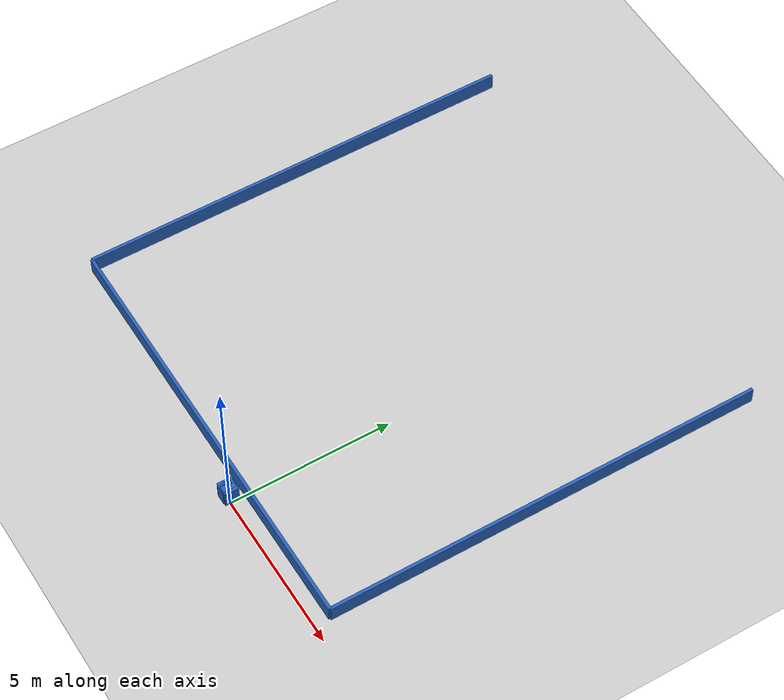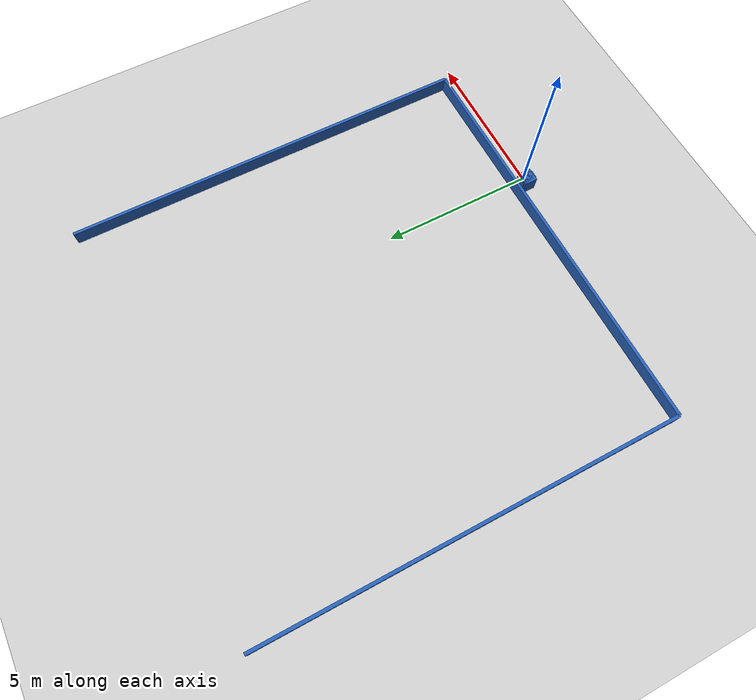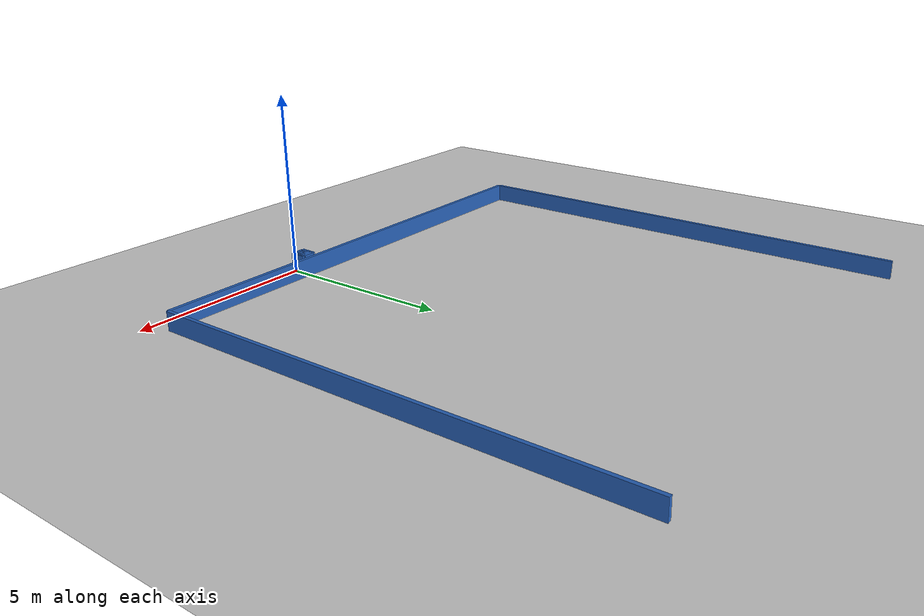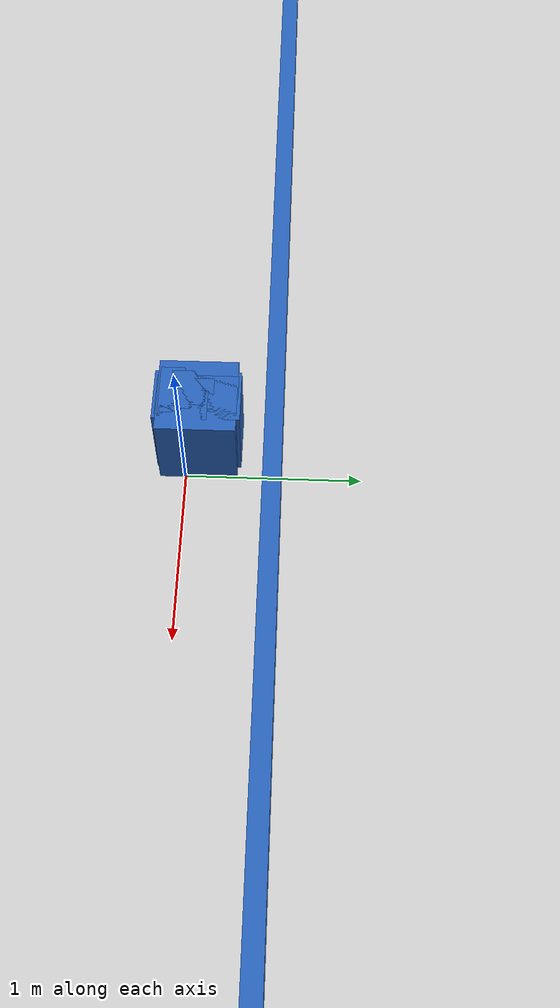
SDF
<?xml version="1.0" ?>
    <sdf version="1.5">
      <world name="default">
        <!-- A global light source -->
        <include>
          <uri>model://sun</uri>
        </include>
        <!-- A ground plane -->
        <include>
          <uri>model://ground_plane</uri>
        </include>

    <model name='libopen_space_final_T2B_51_63'>
      <static>1</static>
      <pose frame=''>-0.225000 0.075000 0.000000 0.000000 0.000000 0.000000</pose>
      <link name='link'>
        <inertial>
          <mass>1</mass>
          <inertia>
            <ixx>0.145833</ixx>
            <ixy>0</ixy>
            <ixz>0</ixz>
            <iyy>0.145833</iyy>
            <iyz>0</iyz>
            <izz>0.125</izz>
          </inertia>
        </inertial>
        <collision name='collision'>
          <geometry>
            <box>
              <size>0.18 0.22 1</size>
            </box>
          </geometry>
          <max_contacts>10</max_contacts>
          <surface>
            <contact>
              <ode/>
            </contact>
            <bounce/>
            <friction>
              <torsional>
                <ode/>
              </torsional>
              <ode/>
            </friction>
          </surface>
        </collision>
        <visual name='visual'>
          <geometry>
            <box>
              <size>0.18 0.22 1</size>
            </box>
          </geometry>
	    <material>
              <ambient>0.152000 0.379000 0.720000 1</ambient>
	      <diffuse>0.152000 0.379000 0.720000 1</diffuse>
          </material>
          <material>
            <script>
              <name>Gazebo/Grey</name>
              <uri>file://media/materials/scripts/gazebo.material</uri>
            </script>
          </material>
        </visual>
        <self_collide>0</self_collide>
        <kinematic>0</kinematic>
        <gravity>1</gravity>
      </link>
      <plugin name='libopen_space_final_T2B_51_63' filename='libopen_space_final_T2B_51_63.so'/>
    </model>

    <model name='libopen_space_final_T2B_79_14'>
      <static>1</static>
      <pose frame=''>-0.225000 0.075000 0.000000 0.000000 0.000000 0.000000</pose>
      <link name='link'>
        <inertial>
          <mass>1</mass>
          <inertia>
            <ixx>0.145833</ixx>
            <ixy>0</ixy>
            <ixz>0</ixz>
            <iyy>0.145833</iyy>
            <iyz>0</iyz>
            <izz>0.125</izz>
          </inertia>
        </inertial>
        <collision name='collision'>
          <geometry>
            <box>
              <size>0.45 0.44 1</size>
            </box>
          </geometry>
          <max_contacts>10</max_contacts>
          <surface>
            <contact>
              <ode/>
            </contact>
            <bounce/>
            <friction>
              <torsional>
                <ode/>
              </torsional>
              <ode/>
            </friction>
          </surface>
        </collision>
        <visual name='visual'>
          <geometry>
            <box>
              <size>0.45 0.44 1</size>
            </box>
          </geometry>
	    <material>
              <ambient>0.152000 0.379000 0.720000 1</ambient>
	      <diffuse>0.152000 0.379000 0.720000 1</diffuse>
          </material>
          <material>
            <script>
              <name>Gazebo/Grey</name>
              <uri>file://media/materials/scripts/gazebo.material</uri>
            </script>
          </material>
        </visual>
        <self_collide>0</self_collide>
        <kinematic>0</kinematic>
        <gravity>1</gravity>
      </link>
      <plugin name='libopen_space_final_T2B_79_14' filename='libopen_space_final_T2B_79_14.so'/>
    </model>

    <model name='libopen_space_final_T2B_126_78'>
      <static>1</static>
      <pose frame=''>-0.225000 0.075000 0.000000 0.000000 0.000000 0.000000</pose>
      <link name='link'>
        <inertial>
          <mass>1</mass>
          <inertia>
            <ixx>0.145833</ixx>
            <ixy>0</ixy>
            <ixz>0</ixz>
            <iyy>0.145833</iyy>
            <iyz>0</iyz>
            <izz>0.125</izz>
          </inertia>
        </inertial>
        <collision name='collision'>
          <geometry>
            <box>
              <size>0.28 0.25 1</size>
            </box>
          </geometry>
          <max_contacts>10</max_contacts>
          <surface>
            <contact>
              <ode/>
            </contact>
            <bounce/>
            <friction>
              <torsional>
                <ode/>
              </torsional>
              <ode/>
            </friction>
          </surface>
        </collision>
        <visual name='visual'>
          <geometry>
            <box>
              <size>0.28 0.25 1</size>
            </box>
          </geometry>
	    <material>
              <ambient>0.152000 0.379000 0.720000 1</ambient>
	      <diffuse>0.152000 0.379000 0.720000 1</diffuse>
          </material>
          <material>
            <script>
              <name>Gazebo/Grey</name>
              <uri>file://media/materials/scripts/gazebo.material</uri>
            </script>
          </material>
        </visual>
        <self_collide>0</self_collide>
        <kinematic>0</kinematic>
        <gravity>1</gravity>
      </link>
      <plugin name='libopen_space_final_T2B_126_78' filename='libopen_space_final_T2B_126_78.so'/>
    </model>

    <model name='libopen_space_final_T2B_115_16'>
      <static>1</static>
      <pose frame=''>-0.225000 0.075000 0.000000 0.000000 0.000000 0.000000</pose>
      <link name='link'>
        <inertial>
          <mass>1</mass>
          <inertia>
            <ixx>0.145833</ixx>
            <ixy>0</ixy>
            <ixz>0</ixz>
            <iyy>0.145833</iyy>
            <iyz>0</iyz>
            <izz>0.125</izz>
          </inertia>
        </inertial>
        <collision name='collision'>
          <geometry>
            <box>
              <size>0.32 0.12 1</size>
            </box>
          </geometry>
          <max_contacts>10</max_contacts>
          <surface>
            <contact>
              <ode/>
            </contact>
            <bounce/>
            <friction>
              <torsional>
                <ode/>
              </torsional>
              <ode/>
            </friction>
          </surface>
        </collision>
        <visual name='visual'>
          <geometry>
            <box>
              <size>0.32 0.12 1</size>
            </box>
          </geometry>
	    <material>
              <ambient>0.152000 0.379000 0.720000 1</ambient>
	      <diffuse>0.152000 0.379000 0.720000 1</diffuse>
          </material>
          <material>
            <script>
              <name>Gazebo/Grey</name>
              <uri>file://media/materials/scripts/gazebo.material</uri>
            </script>
          </material>
        </visual>
        <self_collide>0</self_collide>
        <kinematic>0</kinematic>
        <gravity>1</gravity>
      </link>
      <plugin name='libopen_space_final_T2B_115_16' filename='libopen_space_final_T2B_115_16.so'/>
    </model>

    <model name='libopen_space_final_T2B_91_57'>
      <static>1</static>
      <pose frame=''>-0.225000 0.075000 0.000000 0.000000 0.000000 0.000000</pose>
      <link name='link'>
        <inertial>
          <mass>1</mass>
          <inertia>
            <ixx>0.145833</ixx>
            <ixy>0</ixy>
            <ixz>0</ixz>
            <iyy>0.145833</iyy>
            <iyz>0</iyz>
            <izz>0.125</izz>
          </inertia>
        </inertial>
        <collision name='collision'>
          <geometry>
            <box>
              <size>0.36 0.42 1</size>
            </box>
          </geometry>
          <max_contacts>10</max_contacts>
          <surface>
            <contact>
              <ode/>
            </contact>
            <bounce/>
            <friction>
              <torsional>
                <ode/>
              </torsional>
              <ode/>
            </friction>
          </surface>
        </collision>
        <visual name='visual'>
          <geometry>
            <box>
              <size>0.36 0.42 1</size>
            </box>
          </geometry>
	    <material>
              <ambient>0.152000 0.379000 0.720000 1</ambient>
	      <diffuse>0.152000 0.379000 0.720000 1</diffuse>
          </material>
          <material>
            <script>
              <name>Gazebo/Grey</name>
              <uri>file://media/materials/scripts/gazebo.material</uri>
            </script>
          </material>
        </visual>
        <self_collide>0</self_collide>
        <kinematic>0</kinematic>
        <gravity>1</gravity>
      </link>
      <plugin name='libopen_space_final_T2B_91_57' filename='libopen_space_final_T2B_91_57.so'/>
    </model>

    <model name='libopen_space_final_T2B_140_51'>
      <static>1</static>
      <pose frame=''>-0.225000 0.075000 0.000000 0.000000 0.000000 0.000000</pose>
      <link name='link'>
        <inertial>
          <mass>1</mass>
          <inertia>
            <ixx>0.145833</ixx>
            <ixy>0</ixy>
            <ixz>0</ixz>
            <iyy>0.145833</iyy>
            <iyz>0</iyz>
            <izz>0.125</izz>
          </inertia>
        </inertial>
        <collision name='collision'>
          <geometry>
            <box>
              <size>0.25 0.32 1</size>
            </box>
          </geometry>
          <max_contacts>10</max_contacts>
          <surface>
            <contact>
              <ode/>
            </contact>
            <bounce/>
            <friction>
              <torsional>
                <ode/>
              </torsional>
              <ode/>
            </friction>
          </surface>
        </collision>
        <visual name='visual'>
          <geometry>
            <box>
              <size>0.25 0.32 1</size>
            </box>
          </geometry>
	    <material>
              <ambient>0.152000 0.379000 0.720000 1</ambient>
	      <diffuse>0.152000 0.379000 0.720000 1</diffuse>
          </material>
          <material>
            <script>
              <name>Gazebo/Grey</name>
              <uri>file://media/materials/scripts/gazebo.material</uri>
            </script>
          </material>
        </visual>
        <self_collide>0</self_collide>
        <kinematic>0</kinematic>
        <gravity>1</gravity>
      </link>
      <plugin name='libopen_space_final_T2B_140_51' filename='libopen_space_final_T2B_140_51.so'/>
    </model>

    <model name='libopen_space_final_T2B_112_28'>
      <static>1</static>
      <pose frame=''>-0.225000 0.075000 0.000000 0.000000 0.000000 0.000000</pose>
      <link name='link'>
        <inertial>
          <mass>1</mass>
          <inertia>
            <ixx>0.145833</ixx>
            <ixy>0</ixy>
            <ixz>0</ixz>
            <iyy>0.145833</iyy>
            <iyz>0</iyz>
            <izz>0.125</izz>
          </inertia>
        </inertial>
        <collision name='collision'>
          <geometry>
            <box>
              <size>0.22 0.13 1</size>
            </box>
          </geometry>
          <max_contacts>10</max_contacts>
          <surface>
            <contact>
              <ode/>
            </contact>
            <bounce/>
            <friction>
              <torsional>
                <ode/>
              </torsional>
              <ode/>
            </friction>
          </surface>
        </collision>
        <visual name='visual'>
          <geometry>
            <box>
              <size>0.22 0.13 1</size>
            </box>
          </geometry>
	    <material>
              <ambient>0.152000 0.379000 0.720000 1</ambient>
	      <diffuse>0.152000 0.379000 0.720000 1</diffuse>
          </material>
          <material>
            <script>
              <name>Gazebo/Grey</name>
              <uri>file://media/materials/scripts/gazebo.material</uri>
            </script>
          </material>
        </visual>
        <self_collide>0</self_collide>
        <kinematic>0</kinematic>
        <gravity>1</gravity>
      </link>
      <plugin name='libopen_space_final_T2B_112_28' filename='libopen_space_final_T2B_112_28.so'/>
    </model>

    <model name='libopen_space_final_T2B_118_50'>
      <static>1</static>
      <pose frame=''>-0.225000 0.075000 0.000000 0.000000 0.000000 0.000000</pose>
      <link name='link'>
        <inertial>
          <mass>1</mass>
          <inertia>
            <ixx>0.145833</ixx>
            <ixy>0</ixy>
            <ixz>0</ixz>
            <iyy>0.145833</iyy>
            <iyz>0</iyz>
            <izz>0.125</izz>
          </inertia>
        </inertial>
        <collision name='collision'>
          <geometry>
            <box>
              <size>0.23 0.40 1</size>
            </box>
          </geometry>
          <max_contacts>10</max_contacts>
          <surface>
            <contact>
              <ode/>
            </contact>
            <bounce/>
            <friction>
              <torsional>
                <ode/>
              </torsional>
              <ode/>
            </friction>
          </surface>
        </collision>
        <visual name='visual'>
          <geometry>
            <box>
              <size>0.23 0.40 1</size>
            </box>
          </geometry>
	    <material>
              <ambient>0.152000 0.379000 0.720000 1</ambient>
	      <diffuse>0.152000 0.379000 0.720000 1</diffuse>
          </material>
          <material>
            <script>
              <name>Gazebo/Grey</name>
              <uri>file://media/materials/scripts/gazebo.material</uri>
            </script>
          </material>
        </visual>
        <self_collide>0</self_collide>
        <kinematic>0</kinematic>
        <gravity>1</gravity>
      </link>
      <plugin name='libopen_space_final_T2B_118_50' filename='libopen_space_final_T2B_118_50.so'/>
    </model>

    <model name='libopen_space_final_T2B_129_92'>
      <static>1</static>
      <pose frame=''>-0.225000 0.075000 0.000000 0.000000 0.000000 0.000000</pose>
      <link name='link'>
        <inertial>
          <mass>1</mass>
          <inertia>
            <ixx>0.145833</ixx>
            <ixy>0</ixy>
            <ixz>0</ixz>
            <iyy>0.145833</iyy>
            <iyz>0</iyz>
            <izz>0.125</izz>
          </inertia>
        </inertial>
        <collision name='collision'>
          <geometry>
            <box>
              <size>0.32 0.29 1</size>
            </box>
          </geometry>
          <max_contacts>10</max_contacts>
          <surface>
            <contact>
              <ode/>
            </contact>
            <bounce/>
            <friction>
              <torsional>
                <ode/>
              </torsional>
              <ode/>
            </friction>
          </surface>
        </collision>
        <visual name='visual'>
          <geometry>
            <box>
              <size>0.32 0.29 1</size>
            </box>
          </geometry>
	    <material>
              <ambient>0.152000 0.379000 0.720000 1</ambient>
	      <diffuse>0.152000 0.379000 0.720000 1</diffuse>
          </material>
          <material>
            <script>
              <name>Gazebo/Grey</name>
              <uri>file://media/materials/scripts/gazebo.material</uri>
            </script>
          </material>
        </visual>
        <self_collide>0</self_collide>
        <kinematic>0</kinematic>
        <gravity>1</gravity>
      </link>
      <plugin name='libopen_space_final_T2B_129_92' filename='libopen_space_final_T2B_129_92.so'/>
    </model>

    <model name='libopen_space_final_T2B_55_44'>
      <static>1</static>
      <pose frame=''>-0.225000 0.075000 0.000000 0.000000 0.000000 0.000000</pose>
      <link name='link'>
        <inertial>
          <mass>1</mass>
          <inertia>
            <ixx>0.145833</ixx>
            <ixy>0</ixy>
            <ixz>0</ixz>
            <iyy>0.145833</iyy>
            <iyz>0</iyz>
            <izz>0.125</izz>
          </inertia>
        </inertial>
        <collision name='collision'>
          <geometry>
            <box>
              <size>0.22 0.18 1</size>
            </box>
          </geometry>
          <max_contacts>10</max_contacts>
          <surface>
            <contact>
              <ode/>
            </contact>
            <bounce/>
            <friction>
              <torsional>
                <ode/>
              </torsional>
              <ode/>
            </friction>
          </surface>
        </collision>
        <visual name='visual'>
          <geometry>
            <box>
              <size>0.22 0.18 1</size>
            </box>
          </geometry>
	    <material>
              <ambient>0.152000 0.379000 0.720000 1</ambient>
	      <diffuse>0.152000 0.379000 0.720000 1</diffuse>
          </material>
          <material>
            <script>
              <name>Gazebo/Grey</name>
              <uri>file://media/materials/scripts/gazebo.material</uri>
            </script>
          </material>
        </visual>
        <self_collide>0</self_collide>
        <kinematic>0</kinematic>
        <gravity>1</gravity>
      </link>
      <plugin name='libopen_space_final_T2B_55_44' filename='libopen_space_final_T2B_55_44.so'/>
    </model>

    <model name='libopen_space_final_T2B_127_53'>
      <static>1</static>
      <pose frame=''>-0.225000 0.075000 0.000000 0.000000 0.000000 0.000000</pose>
      <link name='link'>
        <inertial>
          <mass>1</mass>
          <inertia>
            <ixx>0.145833</ixx>
            <ixy>0</ixy>
            <ixz>0</ixz>
            <iyy>0.145833</iyy>
            <iyz>0</iyz>
            <izz>0.125</izz>
          </inertia>
        </inertial>
        <collision name='collision'>
          <geometry>
            <box>
              <size>0.36 0.42 1</size>
            </box>
          </geometry>
          <max_contacts>10</max_contacts>
          <surface>
            <contact>
              <ode/>
            </contact>
            <bounce/>
            <friction>
              <torsional>
                <ode/>
              </torsional>
              <ode/>
            </friction>
          </surface>
        </collision>
        <visual name='visual'>
          <geometry>
            <box>
              <size>0.36 0.42 1</size>
            </box>
          </geometry>
	    <material>
              <ambient>0.152000 0.379000 0.720000 1</ambient>
	      <diffuse>0.152000 0.379000 0.720000 1</diffuse>
          </material>
          <material>
            <script>
              <name>Gazebo/Grey</name>
              <uri>file://media/materials/scripts/gazebo.material</uri>
            </script>
          </material>
        </visual>
        <self_collide>0</self_collide>
        <kinematic>0</kinematic>
        <gravity>1</gravity>
      </link>
      <plugin name='libopen_space_final_T2B_127_53' filename='libopen_space_final_T2B_127_53.so'/>
    </model>

    <model name='libopen_space_final_T2B_87_56'>
      <static>1</static>
      <pose frame=''>-0.225000 0.075000 0.000000 0.000000 0.000000 0.000000</pose>
      <link name='link'>
        <inertial>
          <mass>1</mass>
          <inertia>
            <ixx>0.145833</ixx>
            <ixy>0</ixy>
            <ixz>0</ixz>
            <iyy>0.145833</iyy>
            <iyz>0</iyz>
            <izz>0.125</izz>
          </inertia>
        </inertial>
        <collision name='collision'>
          <geometry>
            <box>
              <size>0.31 0.48 1</size>
            </box>
          </geometry>
          <max_contacts>10</max_contacts>
          <surface>
            <contact>
              <ode/>
            </contact>
            <bounce/>
            <friction>
              <torsional>
                <ode/>
              </torsional>
              <ode/>
            </friction>
          </surface>
        </collision>
        <visual name='visual'>
          <geometry>
            <box>
              <size>0.31 0.48 1</size>
            </box>
          </geometry>
	    <material>
              <ambient>0.152000 0.379000 0.720000 1</ambient>
	      <diffuse>0.152000 0.379000 0.720000 1</diffuse>
          </material>
          <material>
            <script>
              <name>Gazebo/Grey</name>
              <uri>file://media/materials/scripts/gazebo.material</uri>
            </script>
          </material>
        </visual>
        <self_collide>0</self_collide>
        <kinematic>0</kinematic>
        <gravity>1</gravity>
      </link>
      <plugin name='libopen_space_final_T2B_87_56' filename='libopen_space_final_T2B_87_56.so'/>
    </model>

    <model name='libopen_space_final_T2B_52_49'>
      <static>1</static>
      <pose frame=''>-0.225000 0.075000 0.000000 0.000000 0.000000 0.000000</pose>
      <link name='link'>
        <inertial>
          <mass>1</mass>
          <inertia>
            <ixx>0.145833</ixx>
            <ixy>0</ixy>
            <ixz>0</ixz>
            <iyy>0.145833</iyy>
            <iyz>0</iyz>
            <izz>0.125</izz>
          </inertia>
        </inertial>
        <collision name='collision'>
          <geometry>
            <box>
              <size>0.26 0.45 1</size>
            </box>
          </geometry>
          <max_contacts>10</max_contacts>
          <surface>
            <contact>
              <ode/>
            </contact>
            <bounce/>
            <friction>
              <torsional>
                <ode/>
              </torsional>
              <ode/>
            </friction>
          </surface>
        </collision>
        <visual name='visual'>
          <geometry>
            <box>
              <size>0.26 0.45 1</size>
            </box>
          </geometry>
	    <material>
              <ambient>0.152000 0.379000 0.720000 1</ambient>
	      <diffuse>0.152000 0.379000 0.720000 1</diffuse>
          </material>
          <material>
            <script>
              <name>Gazebo/Grey</name>
              <uri>file://media/materials/scripts/gazebo.material</uri>
            </script>
          </material>
        </visual>
        <self_collide>0</self_collide>
        <kinematic>0</kinematic>
        <gravity>1</gravity>
      </link>
      <plugin name='libopen_space_final_T2B_52_49' filename='libopen_space_final_T2B_52_49.so'/>
    </model>

        <model name='bottom_wall'>
          <static>1</static>
          <pose frame=''>-2.25 0.5 0.000000 0.000000 0.000000 1.57079632</pose>
          <link name='link'>
            <inertial>
            <mass>1</mass>
            <inertia>
              <ixx>0.145833</ixx>
              <ixy>0</ixy>
              <ixz>0</ixz>
              <iyy>0.145833</iyy>
              <iyz>0</iyz>
              <izz>0.125</izz>
            </inertia>
            </inertial>
            <collision name='collision'>
            <geometry>
              <box>
              <size>0.1 13.5 1</size>
              </box>
            </geometry>
            <max_contacts>10</max_contacts>
            <surface>
              <contact>
              <ode/>
              </contact>
              <bounce/>
              <friction>
              <torsional>
                <ode/>
              </torsional>
              <ode/>
              </friction>
            </surface>
            </collision>
            <visual name='visual'>
            <geometry>
              <box>
              <size>0.1 13.5 1</size>
              </box>
            </geometry>
            <material>
              <ambient>0.152000 0.379000 0.720000 1</ambient>
            <diffuse>0.152000 0.379000 0.720000 1</diffuse>
            </material>
            <material>
              <script>
              <name>Gazebo/Grey</name>
              <uri>file://media/materials/scripts/gazebo.material</uri>
              </script>
            </material>
            </visual>
            <self_collide>0</self_collide>
            <kinematic>0</kinematic>
            <gravity>1</gravity>
          </link>
        </model>

        <model name='left_wall'>
          <static>1</static>
          <pose frame=''>-9 7.25 0.000000 0.000000 0.000000 0.000000</pose>
          <link name='link'>
            <inertial>
            <mass>1</mass>
            <inertia>
              <ixx>0.145833</ixx>
              <ixy>0</ixy>
              <ixz>0</ixz>
              <iyy>0.145833</iyy>
              <iyz>0</iyz>
              <izz>0.125</izz>
            </inertia>
            </inertial>
            <collision name='collision'>
            <geometry>
              <box>
              <size>0.1 13.5 1</size>
              </box>
            </geometry>
            <max_contacts>10</max_contacts>
            <surface>
              <contact>
              <ode/>
              </contact>
              <bounce/>
              <friction>
              <torsional>
                <ode/>
              </torsional>
              <ode/>
              </friction>
            </surface>
            </collision>
            <visual name='visual'>
            <geometry>
              <box>
              <size>0.1 13.5 1</size>
              </box>
            </geometry>
            <material>
              <ambient>0.152000 0.379000 0.720000 1</ambient>
            <diffuse>0.152000 0.379000 0.720000 1</diffuse>
            </material>
            <material>
              <script>
              <name>Gazebo/Grey</name>
              <uri>file://media/materials/scripts/gazebo.material</uri>
              </script>
            </material>
            </visual>
            <self_collide>0</self_collide>
            <kinematic>0</kinematic>
            <gravity>1</gravity>
          </link>
        </model>

        <model name='right_wall'>
          <static>1</static>
          <pose frame=''>4.5 7.25 0.000000 0.000000 0.000000 0.000000</pose>
          <link name='link'>
            <inertial>
            <mass>1</mass>
            <inertia>
              <ixx>0.145833</ixx>
              <ixy>0</ixy>
              <ixz>0</ixz>
              <iyy>0.145833</iyy>
              <iyz>0</iyz>
              <izz>0.125</izz>
            </inertia>
            </inertial>
            <collision name='collision'>
            <geometry>
              <box>
              <size>0.1 13.5 1</size>
              </box>
            </geometry>
            <max_contacts>10</max_contacts>
            <surface>
              <contact>
              <ode/>
              </contact>
              <bounce/>
              <friction>
              <torsional>
                <ode/>
              </torsional>
              <ode/>
              </friction>
            </surface>
            </collision>
            <visual name='visual'>
            <geometry>
              <box>
              <size>0.1 13.5 1</size>
              </box>
            </geometry>
            <material>
              <ambient>0.152000 0.379000 0.720000 1</ambient>
            <diffuse>0.152000 0.379000 0.720000 1</diffuse>
            </material>
            <material>
              <script>
              <name>Gazebo/Grey</name>
              <uri>file://media/materials/scripts/gazebo.material</uri>
              </script>
            </material>
            </visual>
            <self_collide>0</self_collide>
            <kinematic>0</kinematic>
            <gravity>1</gravity>
          </link>
        </model>

      </world>
    </sdf>"
